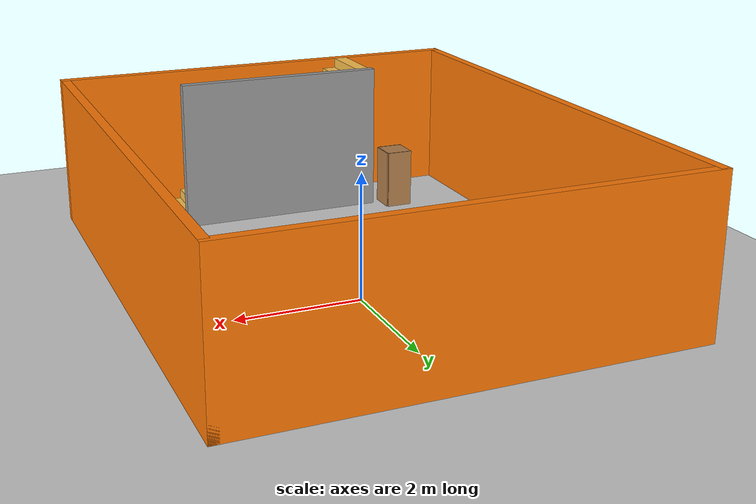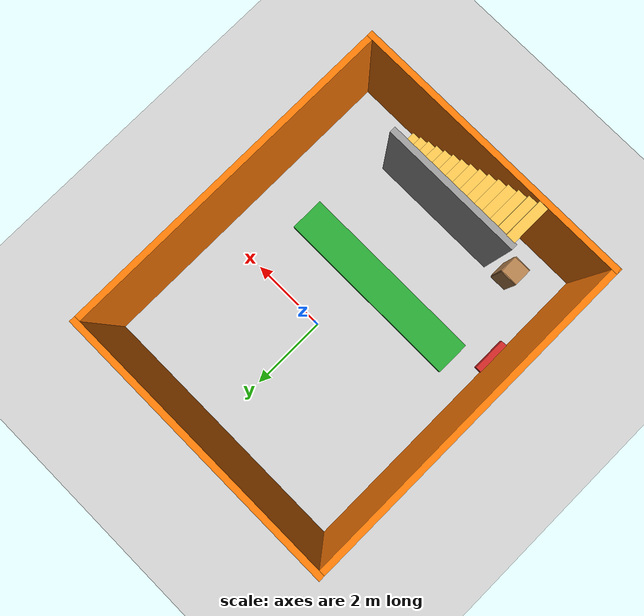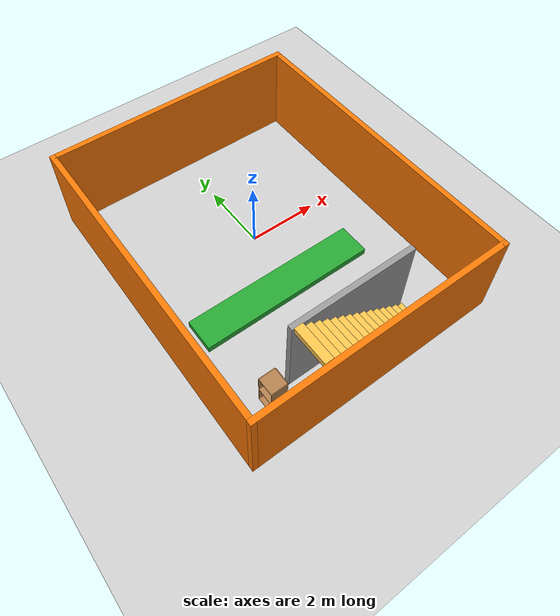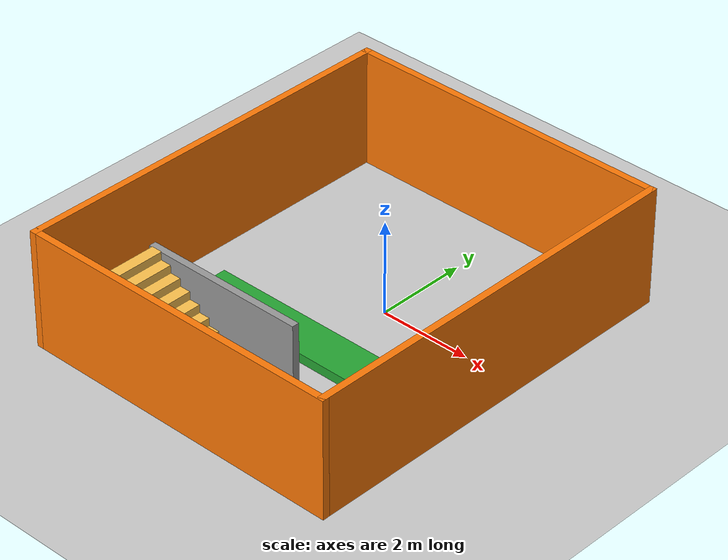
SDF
<sdf version="1.6">
 <world name="default">
  <light name="sun" type="directional">
   <pose>0 0 10 0 -0 0</pose>
   <diffuse>0.8 0.8 0.8 1</diffuse>
   <specular>0.2 0.2 0.2 1</specular>
   <attenuation>
    <range>1000</range>
    <constant>0.9</constant>
    <linear>0.01</linear>
    <quadratic>0.001</quadratic>
   </attenuation>
   <direction>-0.5 0.1 -0.9</direction>
  </light>
  <model name="ground_plane">
   <static>1</static>
   <link name="link">
    <collision name="collision">
     <geometry><plane><normal>0 0 1</normal><size>100 100</size></plane></geometry>
     <surface>
      <contact><collide_bitmask>65535</collide_bitmask></contact>
      <friction><ode><mu>100</mu><mu2>50</mu2></ode></friction>
     </surface>
    </collision>
    <visual name="visual">
     <cast_shadows>0</cast_shadows>
     <geometry><plane><normal>0 0 1</normal><size>100 100</size></plane></geometry>
     <material>
      <script><uri>file://media/materials/scripts/gazebo.material</uri><name>Gazebo/Grey</name></script>
     </material>
    </visual>
   </link>
  </model>
  <gravity>0 0 -9.8</gravity>
  <magnetic_field>6e-06 2.3e-05 -4.2e-05</magnetic_field>
  <atmosphere type="adiabatic"/>
  <physics name="default_physics" default="0" type="ode">
   <max_step_size>0.001</max_step_size>
   <real_time_factor>1</real_time_factor>
   <real_time_update_rate>1000</real_time_update_rate>
  </physics>
  <scene><ambient>0.4 0.4 0.4 1</ambient><background>0.7 0.7 0.7 1</background><shadows>1</shadows></scene>
  <audio><device>default</device></audio>
  <spherical_coordinates>
   <surface_model>EARTH_WGS84</surface_model>
   <latitude_deg>0</latitude_deg>
   <longitude_deg>0</longitude_deg>
   <elevation>0</elevation>
   <heading_deg>0</heading_deg>
  </spherical_coordinates>
  <model name="lroom">
   <pose>-0.171643 -0.831235 0.108374 0 -0 0</pose>
   <link name="Stairs_1">
    <visual name="Stairs_1_Visual_0">
     <pose>1.72333 -3.67 0.083333 0 -0 -1.5708</pose>
     <geometry><box><size>1 0.233333 0.166667</size></box></geometry>
     <material>
      <script><uri>file://media/materials/scripts/gazebo.material</uri><name>Gazebo/Grey</name></script>
      <ambient>1 0.764706 0.305882 1</ambient>
     </material>
     <meta><layer>0</layer></meta>
    </visual>
    <collision name="Stairs_1_Collision_0">
     <geometry><box><size>1 0.233333 0.166667</size></box></geometry>
     <pose>1.72333 -3.67 0.083333 0 -0 -1.5708</pose>
    </collision>
    <visual name="Stairs_1_Visual_1">
     <pose>1.49 -3.67 0.25 0 -0 -1.5708</pose>
     <geometry><box><size>1 0.233333 0.166667</size></box></geometry>
     <material>
      <script><uri>file://media/materials/scripts/gazebo.material</uri><name>Gazebo/Grey</name></script>
      <ambient>1 0.764706 0.305882 1</ambient>
     </material>
     <meta><layer>0</layer></meta>
    </visual>
    <collision name="Stairs_1_Collision_1">
     <geometry><box><size>1 0.233333 0.166667</size></box></geometry>
     <pose>1.49 -3.67 0.25 0 -0 -1.5708</pose>
    </collision>
    <visual name="Stairs_1_Visual_2">
     <pose>1.25667 -3.67 0.416667 0 -0 -1.5708</pose>
     <geometry><box><size>1 0.233333 0.166667</size></box></geometry>
     <material>
      <script><uri>file://media/materials/scripts/gazebo.material</uri><name>Gazebo/Grey</name></script>
      <ambient>1 0.764706 0.305882 1</ambient>
     </material>
     <meta><layer>0</layer></meta>
    </visual>
    <collision name="Stairs_1_Collision_2">
     <geometry><box><size>1 0.233333 0.166667</size></box></geometry>
     <pose>1.25667 -3.67 0.416667 0 -0 -1.5708</pose>
    </collision>
    <visual name="Stairs_1_Visual_3">
     <pose>1.02333 -3.67 0.583333 0 -0 -1.5708</pose>
     <geometry><box><size>1 0.233333 0.166667</size></box></geometry>
     <material>
      <script><uri>file://media/materials/scripts/gazebo.material</uri><name>Gazebo/Grey</name></script>
      <ambient>1 0.764706 0.305882 1</ambient>
     </material>
     <meta><layer>0</layer></meta>
    </visual>
    <collision name="Stairs_1_Collision_3">
     <geometry><box><size>1 0.233333 0.166667</size></box></geometry>
     <pose>1.02333 -3.67 0.583333 0 -0 -1.5708</pose>
    </collision>
    <visual name="Stairs_1_Visual_4">
     <pose>0.79 -3.67 0.75 0 -0 -1.5708</pose>
     <geometry><box><size>1 0.233333 0.166667</size></box></geometry>
     <material>
      <script><uri>file://media/materials/scripts/gazebo.material</uri><name>Gazebo/Grey</name></script>
      <ambient>1 0.764706 0.305882 1</ambient>
     </material>
     <meta><layer>0</layer></meta>
    </visual>
    <collision name="Stairs_1_Collision_4">
     <geometry><box><size>1 0.233333 0.166667</size></box></geometry>
     <pose>0.79 -3.67 0.75 0 -0 -1.5708</pose>
    </collision>
    <visual name="Stairs_1_Visual_5">
     <pose>0.556667 -3.67 0.916667 0 -0 -1.5708</pose>
     <geometry><box><size>1 0.233333 0.166667</size></box></geometry>
     <material>
      <script><uri>file://media/materials/scripts/gazebo.material</uri><name>Gazebo/Grey</name></script>
      <ambient>1 0.764706 0.305882 1</ambient>
     </material>
     <meta><layer>0</layer></meta>
    </visual>
    <collision name="Stairs_1_Collision_5">
     <geometry><box><size>1 0.233333 0.166667</size></box></geometry>
     <pose>0.556667 -3.67 0.916667 0 -0 -1.5708</pose>
    </collision>
    <visual name="Stairs_1_Visual_6">
     <pose>0.323333 -3.67 1.08333 0 -0 -1.5708</pose>
     <geometry><box><size>1 0.233333 0.166667</size></box></geometry>
     <material>
      <script><uri>file://media/materials/scripts/gazebo.material</uri><name>Gazebo/Grey</name></script>
      <ambient>1 0.764706 0.305882 1</ambient>
     </material>
     <meta><layer>0</layer></meta>
    </visual>
    <collision name="Stairs_1_Collision_6">
     <geometry><box><size>1 0.233333 0.166667</size></box></geometry>
     <pose>0.323333 -3.67 1.08333 0 -0 -1.5708</pose>
    </collision>
    <visual name="Stairs_1_Visual_7">
     <pose>0.09 -3.67 1.25 0 -0 -1.5708</pose>
     <geometry><box><size>1 0.233333 0.166667</size></box></geometry>
     <material>
      <script><uri>file://media/materials/scripts/gazebo.material</uri><name>Gazebo/Grey</name></script>
      <ambient>1 0.764706 0.305882 1</ambient>
     </material>
     <meta><layer>0</layer></meta>
    </visual>
    <collision name="Stairs_1_Collision_7">
     <geometry><box><size>1 0.233333 0.166667</size></box></geometry>
     <pose>0.09 -3.67 1.25 0 -0 -1.5708</pose>
    </collision>
    <visual name="Stairs_1_Visual_8">
     <pose>-0.143333 -3.67 1.41667 0 -0 -1.5708</pose>
     <geometry><box><size>1 0.233333 0.166667</size></box></geometry>
     <material>
      <script><uri>file://media/materials/scripts/gazebo.material</uri><name>Gazebo/Grey</name></script>
      <ambient>1 0.764706 0.305882 1</ambient>
     </material>
     <meta><layer>0</layer></meta>
    </visual>
    <collision name="Stairs_1_Collision_8">
     <geometry><box><size>1 0.233333 0.166667</size></box></geometry>
     <pose>-0.143333 -3.67 1.41667 0 -0 -1.5708</pose>
    </collision>
    <visual name="Stairs_1_Visual_9">
     <pose>-0.376667 -3.67 1.58333 0 -0 -1.5708</pose>
     <geometry><box><size>1 0.233333 0.166667</size></box></geometry>
     <material>
      <script><uri>file://media/materials/scripts/gazebo.material</uri><name>Gazebo/Grey</name></script>
      <ambient>1 0.764706 0.305882 1</ambient>
     </material>
     <meta><layer>0</layer></meta>
    </visual>
    <collision name="Stairs_1_Collision_9">
     <geometry><box><size>1 0.233333 0.166667</size></box></geometry>
     <pose>-0.376667 -3.67 1.58333 0 -0 -1.5708</pose>
    </collision>
    <visual name="Stairs_1_Visual_10">
     <pose>-0.61 -3.67 1.75 0 -0 -1.5708</pose>
     <geometry><box><size>1 0.233333 0.166667</size></box></geometry>
     <material>
      <script><uri>file://media/materials/scripts/gazebo.material</uri><name>Gazebo/Grey</name></script>
      <ambient>1 0.764706 0.305882 1</ambient>
     </material>
     <meta><layer>0</layer></meta>
    </visual>
    <collision name="Stairs_1_Collision_10">
     <geometry><box><size>1 0.233333 0.166667</size></box></geometry>
     <pose>-0.61 -3.67 1.75 0 -0 -1.5708</pose>
    </collision>
    <visual name="Stairs_1_Visual_11">
     <pose>-0.843333 -3.67 1.91667 0 -0 -1.5708</pose>
     <geometry><box><size>1 0.233333 0.166667</size></box></geometry>
     <material>
      <script><uri>file://media/materials/scripts/gazebo.material</uri><name>Gazebo/Grey</name></script>
      <ambient>1 0.764706 0.305882 1</ambient>
     </material>
     <meta><layer>0</layer></meta>
    </visual>
    <collision name="Stairs_1_Collision_11">
     <geometry><box><size>1 0.233333 0.166667</size></box></geometry>
     <pose>-0.843333 -3.67 1.91667 0 -0 -1.5708</pose>
    </collision>
    <visual name="Stairs_1_Visual_12">
     <pose>-1.07667 -3.67 2.08333 0 -0 -1.5708</pose>
     <geometry><box><size>1 0.233333 0.166667</size></box></geometry>
     <material>
      <script><uri>file://media/materials/scripts/gazebo.material</uri><name>Gazebo/Grey</name></script>
      <ambient>1 0.764706 0.305882 1</ambient>
     </material>
     <meta><layer>0</layer></meta>
    </visual>
    <collision name="Stairs_1_Collision_12">
     <geometry><box><size>1 0.233333 0.166667</size></box></geometry>
     <pose>-1.07667 -3.67 2.08333 0 -0 -1.5708</pose>
    </collision>
    <visual name="Stairs_1_Visual_13">
     <pose>-1.31 -3.67 2.25 0 -0 -1.5708</pose>
     <geometry><box><size>1 0.233333 0.166667</size></box></geometry>
     <material>
      <script><uri>file://media/materials/scripts/gazebo.material</uri><name>Gazebo/Grey</name></script>
      <ambient>1 0.764706 0.305882 1</ambient>
     </material>
     <meta><layer>0</layer></meta>
    </visual>
    <collision name="Stairs_1_Collision_13">
     <geometry><box><size>1 0.233333 0.166667</size></box></geometry>
     <pose>-1.31 -3.67 2.25 0 -0 -1.5708</pose>
    </collision>
    <visual name="Stairs_1_Visual_14">
     <pose>-1.54333 -3.67 2.41667 0 -0 -1.5708</pose>
     <geometry><box><size>1 0.233333 0.166667</size></box></geometry>
     <material>
      <script><uri>file://media/materials/scripts/gazebo.material</uri><name>Gazebo/Grey</name></script>
      <ambient>1 0.764706 0.305882 1</ambient>
     </material>
     <meta><layer>0</layer></meta>
    </visual>
    <collision name="Stairs_1_Collision_14">
     <geometry><box><size>1 0.233333 0.166667</size></box></geometry>
     <pose>-1.54333 -3.67 2.41667 0 -0 -1.5708</pose>
    </collision>
   </link>
   <link name="Wall_10">
    <collision name="Wall_10_Collision">
     <geometry><box><size>7.15 0.15 2.5</size></box></geometry>
     <pose>0 0 1.25 0 -0 0</pose>
    </collision>
    <visual name="Wall_10_Visual">
     <pose>0 0 1.25 0 -0 0</pose>
     <geometry><box><size>7.15 0.15 2.5</size></box></geometry>
     <material>
      <script><uri>file://media/materials/scripts/gazebo.material</uri><name>Gazebo/Grey</name></script>
      <ambient>0.996078 0.47451 0.0196078 1</ambient>
     </material>
     <meta><layer>0</layer></meta>
    </visual>
    <pose>0 4.25 0 0 -0 0</pose>
   </link>
   <link name="Wall_11">
    <collision name="Wall_11_Collision">
     <geometry><box><size>8.65 0.15 2.5</size></box></geometry>
     <pose>0 0 1.25 0 -0 0</pose>
    </collision>
    <visual name="Wall_11_Visual">
     <pose>0 0 1.25 0 -0 0</pose>
     <geometry><box><size>8.65 0.15 2.5</size></box></geometry>
     <material>
      <script><uri>file://media/materials/scripts/gazebo.material</uri><name>Gazebo/Grey</name></script>
      <ambient>0.996078 0.47451 0.0196078 1</ambient>
     </material>
     <meta><layer>0</layer></meta>
    </visual>
    <pose>3.5 0 0 0 -0 -1.5708</pose>
   </link>
   <link name="Wall_13">
    <collision name="Wall_13_Collision">
     <geometry><box><size>3.5 0.15 2.5</size></box></geometry>
     <pose>0 0 1.25 0 -0 0</pose>
    </collision>
    <visual name="Wall_13_Visual">
     <pose>0 0 1.25 0 -0 0</pose>
     <geometry><box><size>3.5 0.15 2.5</size></box></geometry>
     <material>
      <script><uri>file://media/materials/scripts/gazebo.material</uri><name>Gazebo/Grey</name></script>
      <ambient>1 1 1 1</ambient>
     </material>
     <meta><layer>0</layer></meta>
    </visual>
    <pose>0.025 -3.11 0 0 -0 0</pose>
   </link>
   <link name="Wall_8">
    <collision name="Wall_8_Collision">
     <geometry><box><size>7.15 0.15 2.5</size></box></geometry>
     <pose>0 0 1.25 0 -0 0</pose>
    </collision>
    <visual name="Wall_8_Visual">
     <pose>0 0 1.25 0 -0 0</pose>
     <geometry><box><size>7.15 0.15 2.5</size></box></geometry>
     <material>
      <script><uri>file://media/materials/scripts/gazebo.material</uri><name>Gazebo/Grey</name></script>
      <ambient>0.996078 0.47451 0.0196078 1</ambient>
     </material>
     <meta><layer>0</layer></meta>
    </visual>
    <pose>0 -4.25 0 0 -0 3.14159</pose>
   </link>
   <link name="Wall_9">
    <collision name="Wall_9_Collision">
     <geometry><box><size>8.65 0.15 2.5</size></box></geometry>
     <pose>0 0 1.25 0 -0 0</pose>
    </collision>
    <visual name="Wall_9_Visual">
     <pose>0 0 1.25 0 -0 0</pose>
     <geometry><box><size>8.65 0.15 2.5</size></box></geometry>
     <material>
      <script><uri>file://media/materials/scripts/gazebo.material</uri><name>Gazebo/Grey</name></script>
      <ambient>0.996078 0.47451 0.0196078 1</ambient>
     </material>
     <meta><layer>0</layer></meta>
    </visual>
    <pose>-3.5 0 0 0 -0 1.5708</pose>
   </link>
   <static>1</static>
  </model>
  <model name="cabinet">
   <static>1</static>
   <link name="cabinet_bottom_plate">
    <inertial>
     <pose>0 0 -1 0 -0 0</pose>
     <inertia><ixx>2.05</ixx><ixy>0</ixy><ixz>0</ixz><iyy>2.05</iyy><iyz>0</iyz><izz>2.05</izz></inertia>
     <mass>25</mass>
    </inertial>
    <collision name="cabinet_bottom_plate_geom">
     <pose>0 0 0.01 0 -0 0</pose>
     <geometry><box><size>0.45 0.45 0.02</size></box></geometry>
    </collision>
    <visual name="cabinet_bottom_plate_geom_visual">
     <pose>0 0 0.01 0 -0 0</pose>
     <geometry><box><size>0.45 0.45 0.02</size></box></geometry>
     <material>
      <script><uri>file://media/materials/scripts/gazebo.material</uri><name>Gazebo/Wood</name></script>
     </material>
    </visual>
    <collision name="cabinet_bottom_plate_geom_cabinet_back_plate">
     <pose>0.235 0 0.51 0 -0 0</pose>
     <geometry><box><size>0.02 0.45 1.02</size></box></geometry>
    </collision>
    <visual name="cabinet_bottom_plate_geom_cabinet_back_plate_visual">
     <pose>0.235 0 0.51 0 -0 0</pose>
     <geometry><box><size>0.02 0.45 1.02</size></box></geometry>
     <material>
      <script><uri>file://media/materials/scripts/gazebo.material</uri><name>Gazebo/Wood</name></script>
     </material>
    </visual>
    <collision name="cabinet_bottom_plate_geom_cabinet_left_plate">
     <pose>0 0.235 0.51 0 -0 0</pose>
     <geometry><box><size>0.45 0.02 1.02</size></box></geometry>
    </collision>
    <visual name="cabinet_bottom_plate_geom_cabinet_left_plate_visual">
     <pose>0 0.235 0.51 0 -0 0</pose>
     <geometry><box><size>0.45 0.02 1.02</size></box></geometry>
     <material>
      <script><uri>file://media/materials/scripts/gazebo.material</uri><name>Gazebo/Wood</name></script>
     </material>
    </visual>
    <collision name="cabinet_bottom_plate_geom_cabinet_middle_plate">
     <pose>0 0 0.51 0 -0 0</pose>
     <geometry><box><size>0.45 0.45 0.02</size></box></geometry>
    </collision>
    <visual name="cabinet_bottom_plate_geom_cabinet_middle_plate_visual">
     <pose>0 0 0.51 0 -0 0</pose>
     <geometry><box><size>0.45 0.45 0.02</size></box></geometry>
     <material>
      <script><uri>file://media/materials/scripts/gazebo.material</uri><name>Gazebo/Wood</name></script>
     </material>
    </visual>
    <collision name="cabinet_bottom_plate_geom_cabinet_right_plate">
     <pose>0 -0.235 0.51 0 -0 0</pose>
     <geometry><box><size>0.45 0.02 1.02</size></box></geometry>
    </collision>
    <visual name="cabinet_bottom_plate_geom_cabinet_right_plate_visual">
     <pose>0 -0.235 0.51 0 -0 0</pose>
     <geometry><box><size>0.45 0.02 1.02</size></box></geometry>
     <material>
      <script><uri>file://media/materials/scripts/gazebo.material</uri><name>Gazebo/Wood</name></script>
     </material>
    </visual>
    <collision name="cabinet_bottom_plate_geom_cabinet_top_plate">
     <pose>0 0 1.01 0 -0 0</pose>
     <geometry><box><size>0.45 0.45 0.02</size></box></geometry>
    </collision>
    <visual name="cabinet_bottom_plate_geom_cabinet_top_plate_visual">
     <pose>0 0 1.01 0 -0 0</pose>
     <geometry><box><size>0.45 0.45 0.02</size></box></geometry>
     <material>
      <script><uri>file://media/materials/scripts/gazebo.material</uri><name>Gazebo/Wood</name></script>
     </material>
    </visual>
   </link>
   <pose>-2.41275 -4.08262 0 0 -0 0</pose>
  </model>
  <model name="dummycoach">
   <link name="link">
    <inertial>
     <mass>1</mass>
     <inertia>
      <ixx>0.166667</ixx>
      <ixy>0</ixy>
      <ixz>0</ixz>
      <iyy>0.166667</iyy>
      <iyz>0</iyz>
      <izz>0.166667</izz>
     </inertia>
    </inertial>
    <pose>-2.46361 -0.181981 0 0 -0 0</pose>
    <visual name="visual">
     <geometry><box><size>5 0.9 0.2</size></box></geometry>
     <material>
      <script><name>Gazebo/Green</name><uri>file://media/materials/scripts/gazebo.material</uri></script>
      <shader type="vertex"><normal_map>__default__</normal_map></shader>
      <ambient>0.3 0.9 0.3 1</ambient>
      <diffuse>0.7 0.7 0.7 1</diffuse>
      <specular>0.01 0.01 0.01 1</specular>
      <emissive>0 0 0 1</emissive>
     </material>
    </visual>
    <collision name="collision">
     <geometry><box><size>5 0.9 0.2</size></box></geometry>
     <surface>
      <friction>
       <ode><mu>1</mu><mu2>1</mu2><fdir1>0 0 0</fdir1><slip1>0</slip1><slip2>0</slip2></ode>
       <torsional>
        <coefficient>1</coefficient>
        <patch_radius>0</patch_radius>
        <surface_radius>0</surface_radius>
        <use_patch_radius>1</use_patch_radius>
        <ode><slip>0</slip></ode>
       </torsional>
      </friction>
      <bounce><restitution_coefficient>0</restitution_coefficient><threshold>1e+06</threshold></bounce>
      <contact>
       <collide_without_contact>0</collide_without_contact>
       <collide_without_contact_bitmask>1</collide_without_contact_bitmask>
       <collide_bitmask>1</collide_bitmask>
       <ode>
        <soft_cfm>0</soft_cfm>
        <soft_erp>0.2</soft_erp>
        <kp>1e+13</kp>
        <kd>1</kd>
        <max_vel>0.01</max_vel>
        <min_depth>0</min_depth>
       </ode>
       <bullet>
        <split_impulse>1</split_impulse>
        <split_impulse_penetration_threshold>-0.01</split_impulse_penetration_threshold>
        <soft_cfm>0</soft_cfm>
        <soft_erp>0.2</soft_erp>
        <kp>1e+13</kp>
        <kd>1</kd>
       </bullet>
      </contact>
     </surface>
    </collision>
   </link>
   <static>1</static>
   <pose>2.06014 -1.53176 0.1 0 -0 0</pose>
  </model>
  <model name="obstacle">
   <link name="link">
    <inertial>
     <mass>1</mass>
     <inertia>
      <ixx>0.166667</ixx>
      <ixy>0</ixy>
      <ixz>0</ixz>
      <iyy>0.166667</iyy>
      <iyz>0</iyz>
      <izz>0.166667</izz>
     </inertia>
    </inertial>
    <visual name="visual">
     <geometry><box><size>0.2 0.9 0.2</size></box></geometry>
     <material>
      <script><name>Gazebo/Red</name><uri>file://media/materials/scripts/gazebo.material</uri></script>
      <shader type="vertex"><normal_map>__default__</normal_map></shader>
      <ambient>0.8 0.3 0.3 1</ambient>
      <diffuse>0.7 0.7 0.7 1</diffuse>
      <specular>0.01 0.01 0.01 1</specular>
      <emissive>0 0 0 1</emissive>
     </material>
    </visual>
    <collision name="collision">
     <geometry><box><size>0.2 0.9 0.2</size></box></geometry>
     <surface>
      <friction>
       <ode><mu>1</mu><mu2>1</mu2><fdir1>0 0 0</fdir1><slip1>0</slip1><slip2>0</slip2></ode>
       <torsional>
        <coefficient>1</coefficient>
        <patch_radius>0</patch_radius>
        <surface_radius>0</surface_radius>
        <use_patch_radius>1</use_patch_radius>
        <ode><slip>0</slip></ode>
       </torsional>
      </friction>
      <bounce><restitution_coefficient>0</restitution_coefficient><threshold>1e+06</threshold></bounce>
      <contact>
       <collide_without_contact>0</collide_without_contact>
       <collide_without_contact_bitmask>1</collide_without_contact_bitmask>
       <collide_bitmask>1</collide_bitmask>
       <ode>
        <soft_cfm>0</soft_cfm>
        <soft_erp>0.2</soft_erp>
        <kp>1e+13</kp>
        <kd>1</kd>
        <max_vel>0.01</max_vel>
        <min_depth>0</min_depth>
       </ode>
       <bullet>
        <split_impulse>1</split_impulse>
        <split_impulse_penetration_threshold>-0.01</split_impulse_penetration_threshold>
        <soft_cfm>0</soft_cfm>
        <soft_erp>0.2</soft_erp>
        <kp>1e+13</kp>
        <kd>1</kd>
       </bullet>
      </contact>
     </surface>
    </collision>
   </link>
   <static>1</static>
   <pose>-3.53776 -2.40462 0.1 0 -0 0</pose>
  </model>
 </world>
</sdf>
